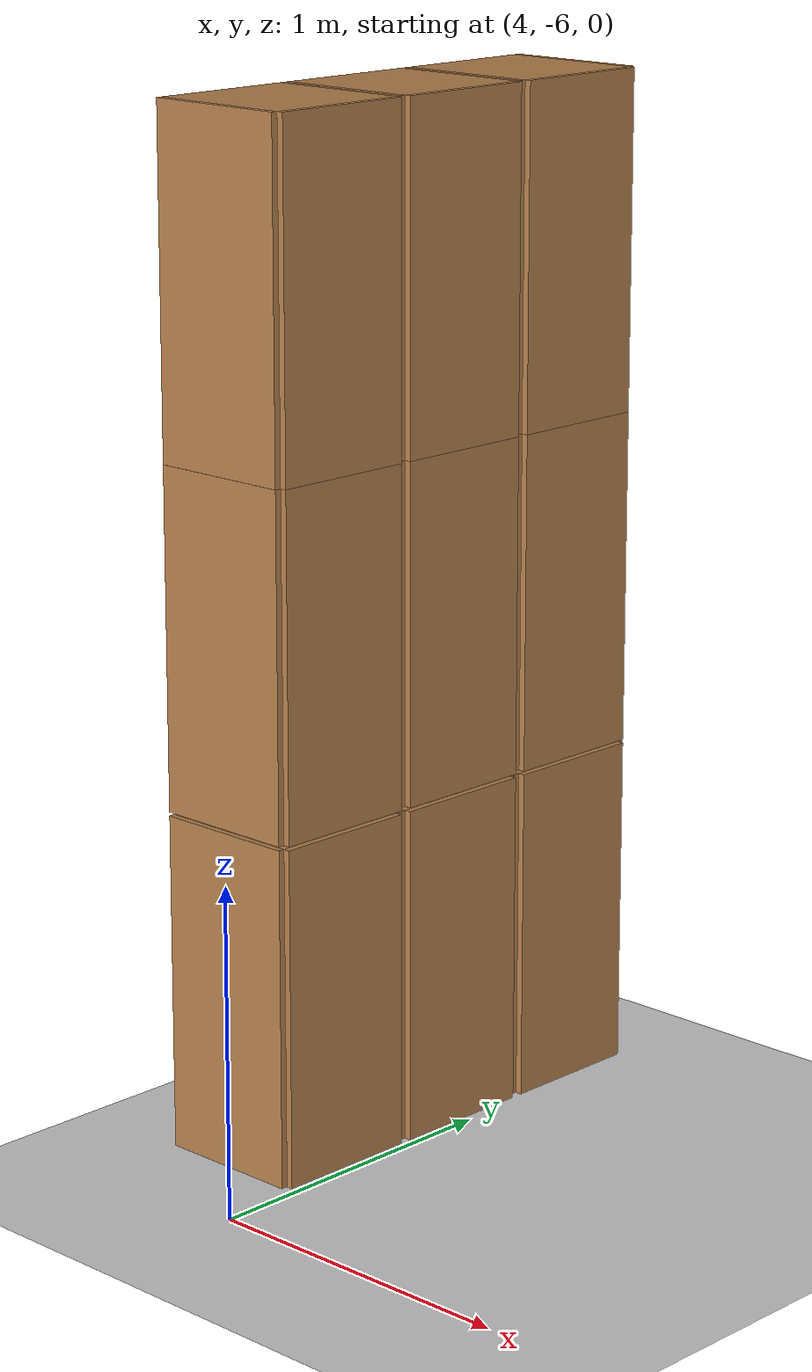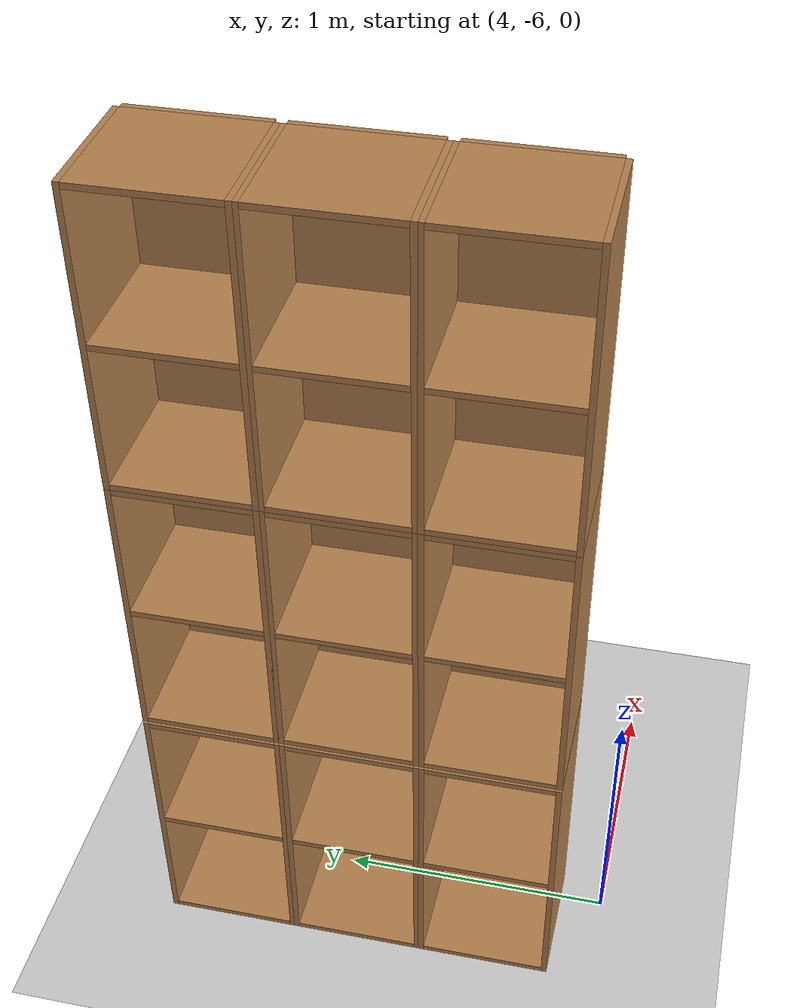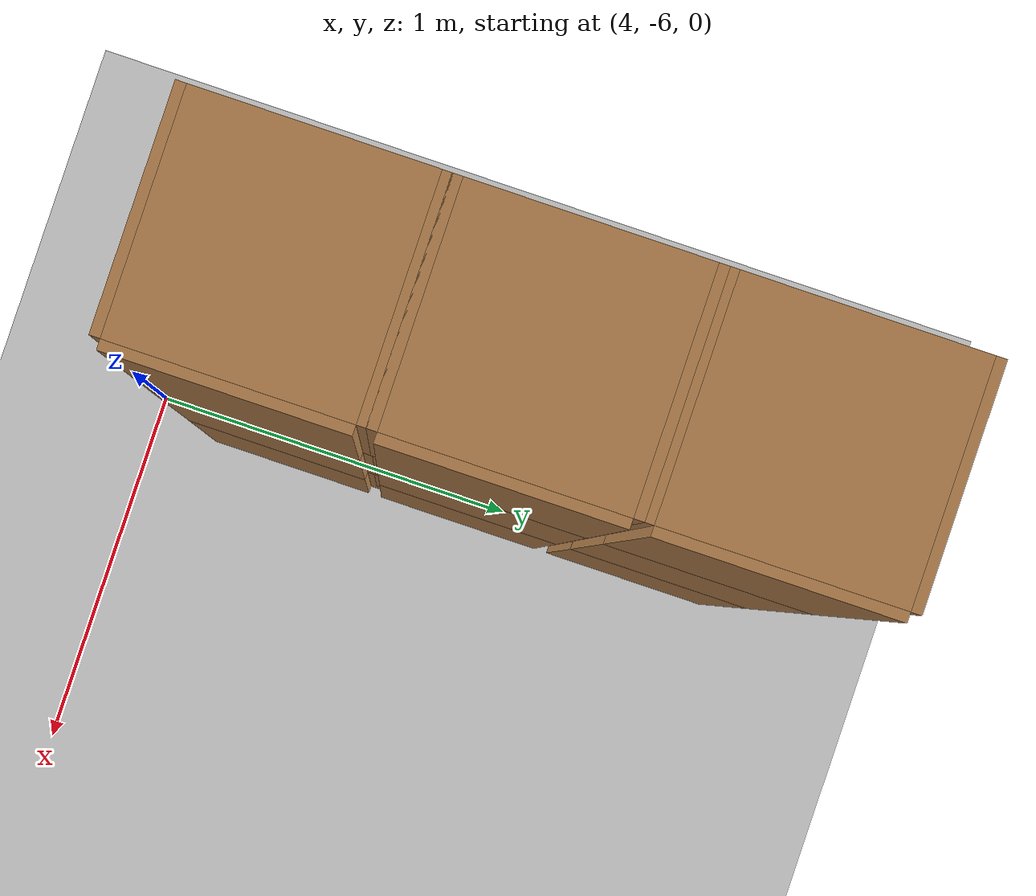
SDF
<sdf version="1.6">
 <world name="default">
  <model name="ground_plane">
   <static>1</static>
   <link name="link">
    <collision name="collision">
     <geometry><plane><normal>0 0 1</normal><size>100 100</size></plane></geometry>
     <surface>
      <contact><collide_bitmask>65535</collide_bitmask></contact>
      <friction><ode><mu>100</mu><mu2>50</mu2></ode></friction>
     </surface>
    </collision>
    <visual name="visual">
     <cast_shadows>0</cast_shadows>
     <geometry><plane><normal>0 0 1</normal><size>100 100</size></plane></geometry>
     <material>
      <script><uri>file://media/materials/scripts/gazebo.material</uri><name>Gazebo/Grey</name></script>
     </material>
    </visual>
   </link>
  </model>
  <model name="Locker18_clone_1">
   <model name="Locker18">
    <model name="Locker3">
     <model name="cabinet">
      <static>1</static>
      <link name="cabinet_bottom_plate">
       <inertial>
        <pose>0 0 -1 0 -0 0</pose>
        <inertia><ixx>2.05</ixx><ixy>0</ixy><ixz>0</ixz><iyy>2.05</iyy><iyz>0</iyz><izz>2.05</izz></inertia>
        <mass>25</mass>
       </inertial>
       <collision name="cabinet_bottom_plate_geom">
        <pose>0 0 0.01 0 -0 0</pose>
        <geometry><box><size>0.45 0.45 0.02</size></box></geometry>
       </collision>
       <visual name="cabinet_bottom_plate_geom_visual">
        <pose>0 0 0.01 0 -0 0</pose>
        <geometry><box><size>0.45 0.45 0.02</size></box></geometry>
        <material>
         <script><uri>file://media/materials/scripts/gazebo.material</uri><name>Gazebo/Wood</name></script>
        </material>
       </visual>
       <collision name="cabinet_bottom_plate_geom_cabinet_back_plate">
        <pose>0.235 0 0.51 0 -0 0</pose>
        <geometry><box><size>0.02 0.45 1.02</size></box></geometry>
       </collision>
       <visual name="cabinet_bottom_plate_geom_cabinet_back_plate_visual">
        <pose>0.235 0 0.51 0 -0 0</pose>
        <geometry><box><size>0.02 0.45 1.02</size></box></geometry>
        <material>
         <script><uri>file://media/materials/scripts/gazebo.material</uri><name>Gazebo/Wood</name></script>
        </material>
       </visual>
       <collision name="cabinet_bottom_plate_geom_cabinet_left_plate">
        <pose>0 0.235 0.51 0 -0 0</pose>
        <geometry><box><size>0.45 0.02 1.02</size></box></geometry>
       </collision>
       <visual name="cabinet_bottom_plate_geom_cabinet_left_plate_visual">
        <pose>0 0.235 0.51 0 -0 0</pose>
        <geometry><box><size>0.45 0.02 1.02</size></box></geometry>
        <material>
         <script><uri>file://media/materials/scripts/gazebo.material</uri><name>Gazebo/Wood</name></script>
        </material>
       </visual>
       <collision name="cabinet_bottom_plate_geom_cabinet_middle_plate">
        <pose>0 0 0.51 0 -0 0</pose>
        <geometry><box><size>0.45 0.45 0.02</size></box></geometry>
       </collision>
       <visual name="cabinet_bottom_plate_geom_cabinet_middle_plate_visual">
        <pose>0 0 0.51 0 -0 0</pose>
        <geometry><box><size>0.45 0.45 0.02</size></box></geometry>
        <material>
         <script><uri>file://media/materials/scripts/gazebo.material</uri><name>Gazebo/Wood</name></script>
        </material>
       </visual>
       <collision name="cabinet_bottom_plate_geom_cabinet_right_plate">
        <pose>0 -0.235 0.51 0 -0 0</pose>
        <geometry><box><size>0.45 0.02 1.02</size></box></geometry>
       </collision>
       <visual name="cabinet_bottom_plate_geom_cabinet_right_plate_visual">
        <pose>0 -0.235 0.51 0 -0 0</pose>
        <geometry><box><size>0.45 0.02 1.02</size></box></geometry>
        <material>
         <script><uri>file://media/materials/scripts/gazebo.material</uri><name>Gazebo/Wood</name></script>
        </material>
       </visual>
       <collision name="cabinet_bottom_plate_geom_cabinet_top_plate">
        <pose>0 0 1.01 0 -0 0</pose>
        <geometry><box><size>0.45 0.45 0.02</size></box></geometry>
       </collision>
       <visual name="cabinet_bottom_plate_geom_cabinet_top_plate_visual">
        <pose>0 0 1.01 0 -0 0</pose>
        <geometry><box><size>0.45 0.45 0.02</size></box></geometry>
        <material>
         <script><uri>file://media/materials/scripts/gazebo.material</uri><name>Gazebo/Wood</name></script>
        </material>
       </visual>
      </link>
      <pose>-0.676968 1.45758 0 0 -0 0</pose>
     </model>
     <model name="cabinet_clone">
      <static>1</static>
      <link name="cabinet_bottom_plate">
       <inertial>
        <pose>0 0 -1 0 -0 0</pose>
        <inertia><ixx>2.05</ixx><ixy>0</ixy><ixz>0</ixz><iyy>2.05</iyy><iyz>0</iyz><izz>2.05</izz></inertia>
        <mass>25</mass>
       </inertial>
       <collision name="cabinet_bottom_plate_geom">
        <pose>0 0 0.01 0 -0 0</pose>
        <geometry><box><size>0.45 0.45 0.02</size></box></geometry>
       </collision>
       <visual name="cabinet_bottom_plate_geom_visual">
        <pose>0 0 0.01 0 -0 0</pose>
        <geometry><box><size>0.45 0.45 0.02</size></box></geometry>
        <material>
         <script><uri>file://media/materials/scripts/gazebo.material</uri><name>Gazebo/Wood</name></script>
        </material>
       </visual>
       <collision name="cabinet_bottom_plate_geom_cabinet_back_plate">
        <pose>0.235 0 0.51 0 -0 0</pose>
        <geometry><box><size>0.02 0.45 1.02</size></box></geometry>
       </collision>
       <visual name="cabinet_bottom_plate_geom_cabinet_back_plate_visual">
        <pose>0.235 0 0.51 0 -0 0</pose>
        <geometry><box><size>0.02 0.45 1.02</size></box></geometry>
        <material>
         <script><uri>file://media/materials/scripts/gazebo.material</uri><name>Gazebo/Wood</name></script>
        </material>
       </visual>
       <collision name="cabinet_bottom_plate_geom_cabinet_left_plate">
        <pose>0 0.235 0.51 0 -0 0</pose>
        <geometry><box><size>0.45 0.02 1.02</size></box></geometry>
       </collision>
       <visual name="cabinet_bottom_plate_geom_cabinet_left_plate_visual">
        <pose>0 0.235 0.51 0 -0 0</pose>
        <geometry><box><size>0.45 0.02 1.02</size></box></geometry>
        <material>
         <script><uri>file://media/materials/scripts/gazebo.material</uri><name>Gazebo/Wood</name></script>
        </material>
       </visual>
       <collision name="cabinet_bottom_plate_geom_cabinet_middle_plate">
        <pose>0 0 0.51 0 -0 0</pose>
        <geometry><box><size>0.45 0.45 0.02</size></box></geometry>
       </collision>
       <visual name="cabinet_bottom_plate_geom_cabinet_middle_plate_visual">
        <pose>0 0 0.51 0 -0 0</pose>
        <geometry><box><size>0.45 0.45 0.02</size></box></geometry>
        <material>
         <script><uri>file://media/materials/scripts/gazebo.material</uri><name>Gazebo/Wood</name></script>
        </material>
       </visual>
       <collision name="cabinet_bottom_plate_geom_cabinet_right_plate">
        <pose>0 -0.235 0.51 0 -0 0</pose>
        <geometry><box><size>0.45 0.02 1.02</size></box></geometry>
       </collision>
       <visual name="cabinet_bottom_plate_geom_cabinet_right_plate_visual">
        <pose>0 -0.235 0.51 0 -0 0</pose>
        <geometry><box><size>0.45 0.02 1.02</size></box></geometry>
        <material>
         <script><uri>file://media/materials/scripts/gazebo.material</uri><name>Gazebo/Wood</name></script>
        </material>
       </visual>
       <collision name="cabinet_bottom_plate_geom_cabinet_top_plate">
        <pose>0 0 1.01 0 -0 0</pose>
        <geometry><box><size>0.45 0.45 0.02</size></box></geometry>
       </collision>
       <visual name="cabinet_bottom_plate_geom_cabinet_top_plate_visual">
        <pose>0 0 1.01 0 -0 0</pose>
        <geometry><box><size>0.45 0.45 0.02</size></box></geometry>
        <material>
         <script><uri>file://media/materials/scripts/gazebo.material</uri><name>Gazebo/Wood</name></script>
        </material>
       </visual>
      </link>
      <pose>-0.676968 0.970971 0 0 -0 0</pose>
     </model>
     <model name="cabinet_clone_0">
      <static>1</static>
      <link name="cabinet_bottom_plate">
       <inertial>
        <pose>0 0 -1 0 -0 0</pose>
        <inertia><ixx>2.05</ixx><ixy>0</ixy><ixz>0</ixz><iyy>2.05</iyy><iyz>0</iyz><izz>2.05</izz></inertia>
        <mass>25</mass>
       </inertial>
       <collision name="cabinet_bottom_plate_geom">
        <pose>0 0 0.01 0 -0 0</pose>
        <geometry><box><size>0.45 0.45 0.02</size></box></geometry>
       </collision>
       <visual name="cabinet_bottom_plate_geom_visual">
        <pose>0 0 0.01 0 -0 0</pose>
        <geometry><box><size>0.45 0.45 0.02</size></box></geometry>
        <material>
         <script><uri>file://media/materials/scripts/gazebo.material</uri><name>Gazebo/Wood</name></script>
        </material>
       </visual>
       <collision name="cabinet_bottom_plate_geom_cabinet_back_plate">
        <pose>0.235 0 0.51 0 -0 0</pose>
        <geometry><box><size>0.02 0.45 1.02</size></box></geometry>
       </collision>
       <visual name="cabinet_bottom_plate_geom_cabinet_back_plate_visual">
        <pose>0.235 0 0.51 0 -0 0</pose>
        <geometry><box><size>0.02 0.45 1.02</size></box></geometry>
        <material>
         <script><uri>file://media/materials/scripts/gazebo.material</uri><name>Gazebo/Wood</name></script>
        </material>
       </visual>
       <collision name="cabinet_bottom_plate_geom_cabinet_left_plate">
        <pose>0 0.235 0.51 0 -0 0</pose>
        <geometry><box><size>0.45 0.02 1.02</size></box></geometry>
       </collision>
       <visual name="cabinet_bottom_plate_geom_cabinet_left_plate_visual">
        <pose>0 0.235 0.51 0 -0 0</pose>
        <geometry><box><size>0.45 0.02 1.02</size></box></geometry>
        <material>
         <script><uri>file://media/materials/scripts/gazebo.material</uri><name>Gazebo/Wood</name></script>
        </material>
       </visual>
       <collision name="cabinet_bottom_plate_geom_cabinet_middle_plate">
        <pose>0 0 0.51 0 -0 0</pose>
        <geometry><box><size>0.45 0.45 0.02</size></box></geometry>
       </collision>
       <visual name="cabinet_bottom_plate_geom_cabinet_middle_plate_visual">
        <pose>0 0 0.51 0 -0 0</pose>
        <geometry><box><size>0.45 0.45 0.02</size></box></geometry>
        <material>
         <script><uri>file://media/materials/scripts/gazebo.material</uri><name>Gazebo/Wood</name></script>
        </material>
       </visual>
       <collision name="cabinet_bottom_plate_geom_cabinet_right_plate">
        <pose>0 -0.235 0.51 0 -0 0</pose>
        <geometry><box><size>0.45 0.02 1.02</size></box></geometry>
       </collision>
       <visual name="cabinet_bottom_plate_geom_cabinet_right_plate_visual">
        <pose>0 -0.235 0.51 0 -0 0</pose>
        <geometry><box><size>0.45 0.02 1.02</size></box></geometry>
        <material>
         <script><uri>file://media/materials/scripts/gazebo.material</uri><name>Gazebo/Wood</name></script>
        </material>
       </visual>
       <collision name="cabinet_bottom_plate_geom_cabinet_top_plate">
        <pose>0 0 1.01 0 -0 0</pose>
        <geometry><box><size>0.45 0.45 0.02</size></box></geometry>
       </collision>
       <visual name="cabinet_bottom_plate_geom_cabinet_top_plate_visual">
        <pose>0 0 1.01 0 -0 0</pose>
        <geometry><box><size>0.45 0.45 0.02</size></box></geometry>
        <material>
         <script><uri>file://media/materials/scripts/gazebo.material</uri><name>Gazebo/Wood</name></script>
        </material>
       </visual>
      </link>
      <pose>-0.676968 0.48391 0 0 -0 0</pose>
     </model>
     <static>0</static>
     <pose>0 3e-06 -1.02763 0 -0 0</pose>
    </model>
    <model name="Locker3_clone">
     <model name="cabinet">
      <static>1</static>
      <link name="cabinet_bottom_plate">
       <inertial>
        <pose>0 0 -1 0 -0 0</pose>
        <inertia><ixx>2.05</ixx><ixy>0</ixy><ixz>0</ixz><iyy>2.05</iyy><iyz>0</iyz><izz>2.05</izz></inertia>
        <mass>25</mass>
       </inertial>
       <collision name="cabinet_bottom_plate_geom">
        <pose>0 0 0.01 0 -0 0</pose>
        <geometry><box><size>0.45 0.45 0.02</size></box></geometry>
       </collision>
       <visual name="cabinet_bottom_plate_geom_visual">
        <pose>0 0 0.01 0 -0 0</pose>
        <geometry><box><size>0.45 0.45 0.02</size></box></geometry>
        <material>
         <script><uri>file://media/materials/scripts/gazebo.material</uri><name>Gazebo/Wood</name></script>
        </material>
       </visual>
       <collision name="cabinet_bottom_plate_geom_cabinet_back_plate">
        <pose>0.235 0 0.51 0 -0 0</pose>
        <geometry><box><size>0.02 0.45 1.02</size></box></geometry>
       </collision>
       <visual name="cabinet_bottom_plate_geom_cabinet_back_plate_visual">
        <pose>0.235 0 0.51 0 -0 0</pose>
        <geometry><box><size>0.02 0.45 1.02</size></box></geometry>
        <material>
         <script><uri>file://media/materials/scripts/gazebo.material</uri><name>Gazebo/Wood</name></script>
        </material>
       </visual>
       <collision name="cabinet_bottom_plate_geom_cabinet_left_plate">
        <pose>0 0.235 0.51 0 -0 0</pose>
        <geometry><box><size>0.45 0.02 1.02</size></box></geometry>
       </collision>
       <visual name="cabinet_bottom_plate_geom_cabinet_left_plate_visual">
        <pose>0 0.235 0.51 0 -0 0</pose>
        <geometry><box><size>0.45 0.02 1.02</size></box></geometry>
        <material>
         <script><uri>file://media/materials/scripts/gazebo.material</uri><name>Gazebo/Wood</name></script>
        </material>
       </visual>
       <collision name="cabinet_bottom_plate_geom_cabinet_middle_plate">
        <pose>0 0 0.51 0 -0 0</pose>
        <geometry><box><size>0.45 0.45 0.02</size></box></geometry>
       </collision>
       <visual name="cabinet_bottom_plate_geom_cabinet_middle_plate_visual">
        <pose>0 0 0.51 0 -0 0</pose>
        <geometry><box><size>0.45 0.45 0.02</size></box></geometry>
        <material>
         <script><uri>file://media/materials/scripts/gazebo.material</uri><name>Gazebo/Wood</name></script>
        </material>
       </visual>
       <collision name="cabinet_bottom_plate_geom_cabinet_right_plate">
        <pose>0 -0.235 0.51 0 -0 0</pose>
        <geometry><box><size>0.45 0.02 1.02</size></box></geometry>
       </collision>
       <visual name="cabinet_bottom_plate_geom_cabinet_right_plate_visual">
        <pose>0 -0.235 0.51 0 -0 0</pose>
        <geometry><box><size>0.45 0.02 1.02</size></box></geometry>
        <material>
         <script><uri>file://media/materials/scripts/gazebo.material</uri><name>Gazebo/Wood</name></script>
        </material>
       </visual>
       <collision name="cabinet_bottom_plate_geom_cabinet_top_plate">
        <pose>0 0 1.01 0 -0 0</pose>
        <geometry><box><size>0.45 0.45 0.02</size></box></geometry>
       </collision>
       <visual name="cabinet_bottom_plate_geom_cabinet_top_plate_visual">
        <pose>0 0 1.01 0 -0 0</pose>
        <geometry><box><size>0.45 0.45 0.02</size></box></geometry>
        <material>
         <script><uri>file://media/materials/scripts/gazebo.material</uri><name>Gazebo/Wood</name></script>
        </material>
       </visual>
      </link>
      <pose>-0.676968 1.45758 0 0 -0 0</pose>
     </model>
     <model name="cabinet_clone">
      <static>1</static>
      <link name="cabinet_bottom_plate">
       <inertial>
        <pose>0 0 -1 0 -0 0</pose>
        <inertia><ixx>2.05</ixx><ixy>0</ixy><ixz>0</ixz><iyy>2.05</iyy><iyz>0</iyz><izz>2.05</izz></inertia>
        <mass>25</mass>
       </inertial>
       <collision name="cabinet_bottom_plate_geom">
        <pose>0 0 0.01 0 -0 0</pose>
        <geometry><box><size>0.45 0.45 0.02</size></box></geometry>
       </collision>
       <visual name="cabinet_bottom_plate_geom_visual">
        <pose>0 0 0.01 0 -0 0</pose>
        <geometry><box><size>0.45 0.45 0.02</size></box></geometry>
        <material>
         <script><uri>file://media/materials/scripts/gazebo.material</uri><name>Gazebo/Wood</name></script>
        </material>
       </visual>
       <collision name="cabinet_bottom_plate_geom_cabinet_back_plate">
        <pose>0.235 0 0.51 0 -0 0</pose>
        <geometry><box><size>0.02 0.45 1.02</size></box></geometry>
       </collision>
       <visual name="cabinet_bottom_plate_geom_cabinet_back_plate_visual">
        <pose>0.235 0 0.51 0 -0 0</pose>
        <geometry><box><size>0.02 0.45 1.02</size></box></geometry>
        <material>
         <script><uri>file://media/materials/scripts/gazebo.material</uri><name>Gazebo/Wood</name></script>
        </material>
       </visual>
       <collision name="cabinet_bottom_plate_geom_cabinet_left_plate">
        <pose>0 0.235 0.51 0 -0 0</pose>
        <geometry><box><size>0.45 0.02 1.02</size></box></geometry>
       </collision>
       <visual name="cabinet_bottom_plate_geom_cabinet_left_plate_visual">
        <pose>0 0.235 0.51 0 -0 0</pose>
        <geometry><box><size>0.45 0.02 1.02</size></box></geometry>
        <material>
         <script><uri>file://media/materials/scripts/gazebo.material</uri><name>Gazebo/Wood</name></script>
        </material>
       </visual>
       <collision name="cabinet_bottom_plate_geom_cabinet_middle_plate">
        <pose>0 0 0.51 0 -0 0</pose>
        <geometry><box><size>0.45 0.45 0.02</size></box></geometry>
       </collision>
       <visual name="cabinet_bottom_plate_geom_cabinet_middle_plate_visual">
        <pose>0 0 0.51 0 -0 0</pose>
        <geometry><box><size>0.45 0.45 0.02</size></box></geometry>
        <material>
         <script><uri>file://media/materials/scripts/gazebo.material</uri><name>Gazebo/Wood</name></script>
        </material>
       </visual>
       <collision name="cabinet_bottom_plate_geom_cabinet_right_plate">
        <pose>0 -0.235 0.51 0 -0 0</pose>
        <geometry><box><size>0.45 0.02 1.02</size></box></geometry>
       </collision>
       <visual name="cabinet_bottom_plate_geom_cabinet_right_plate_visual">
        <pose>0 -0.235 0.51 0 -0 0</pose>
        <geometry><box><size>0.45 0.02 1.02</size></box></geometry>
        <material>
         <script><uri>file://media/materials/scripts/gazebo.material</uri><name>Gazebo/Wood</name></script>
        </material>
       </visual>
       <collision name="cabinet_bottom_plate_geom_cabinet_top_plate">
        <pose>0 0 1.01 0 -0 0</pose>
        <geometry><box><size>0.45 0.45 0.02</size></box></geometry>
       </collision>
       <visual name="cabinet_bottom_plate_geom_cabinet_top_plate_visual">
        <pose>0 0 1.01 0 -0 0</pose>
        <geometry><box><size>0.45 0.45 0.02</size></box></geometry>
        <material>
         <script><uri>file://media/materials/scripts/gazebo.material</uri><name>Gazebo/Wood</name></script>
        </material>
       </visual>
      </link>
      <pose>-0.676968 0.970971 0 0 -0 0</pose>
     </model>
     <model name="cabinet_clone_0">
      <static>1</static>
      <link name="cabinet_bottom_plate">
       <inertial>
        <pose>0 0 -1 0 -0 0</pose>
        <inertia><ixx>2.05</ixx><ixy>0</ixy><ixz>0</ixz><iyy>2.05</iyy><iyz>0</iyz><izz>2.05</izz></inertia>
        <mass>25</mass>
       </inertial>
       <collision name="cabinet_bottom_plate_geom">
        <pose>0 0 0.01 0 -0 0</pose>
        <geometry><box><size>0.45 0.45 0.02</size></box></geometry>
       </collision>
       <visual name="cabinet_bottom_plate_geom_visual">
        <pose>0 0 0.01 0 -0 0</pose>
        <geometry><box><size>0.45 0.45 0.02</size></box></geometry>
        <material>
         <script><uri>file://media/materials/scripts/gazebo.material</uri><name>Gazebo/Wood</name></script>
        </material>
       </visual>
       <collision name="cabinet_bottom_plate_geom_cabinet_back_plate">
        <pose>0.235 0 0.51 0 -0 0</pose>
        <geometry><box><size>0.02 0.45 1.02</size></box></geometry>
       </collision>
       <visual name="cabinet_bottom_plate_geom_cabinet_back_plate_visual">
        <pose>0.235 0 0.51 0 -0 0</pose>
        <geometry><box><size>0.02 0.45 1.02</size></box></geometry>
        <material>
         <script><uri>file://media/materials/scripts/gazebo.material</uri><name>Gazebo/Wood</name></script>
        </material>
       </visual>
       <collision name="cabinet_bottom_plate_geom_cabinet_left_plate">
        <pose>0 0.235 0.51 0 -0 0</pose>
        <geometry><box><size>0.45 0.02 1.02</size></box></geometry>
       </collision>
       <visual name="cabinet_bottom_plate_geom_cabinet_left_plate_visual">
        <pose>0 0.235 0.51 0 -0 0</pose>
        <geometry><box><size>0.45 0.02 1.02</size></box></geometry>
        <material>
         <script><uri>file://media/materials/scripts/gazebo.material</uri><name>Gazebo/Wood</name></script>
        </material>
       </visual>
       <collision name="cabinet_bottom_plate_geom_cabinet_middle_plate">
        <pose>0 0 0.51 0 -0 0</pose>
        <geometry><box><size>0.45 0.45 0.02</size></box></geometry>
       </collision>
       <visual name="cabinet_bottom_plate_geom_cabinet_middle_plate_visual">
        <pose>0 0 0.51 0 -0 0</pose>
        <geometry><box><size>0.45 0.45 0.02</size></box></geometry>
        <material>
         <script><uri>file://media/materials/scripts/gazebo.material</uri><name>Gazebo/Wood</name></script>
        </material>
       </visual>
       <collision name="cabinet_bottom_plate_geom_cabinet_right_plate">
        <pose>0 -0.235 0.51 0 -0 0</pose>
        <geometry><box><size>0.45 0.02 1.02</size></box></geometry>
       </collision>
       <visual name="cabinet_bottom_plate_geom_cabinet_right_plate_visual">
        <pose>0 -0.235 0.51 0 -0 0</pose>
        <geometry><box><size>0.45 0.02 1.02</size></box></geometry>
        <material>
         <script><uri>file://media/materials/scripts/gazebo.material</uri><name>Gazebo/Wood</name></script>
        </material>
       </visual>
       <collision name="cabinet_bottom_plate_geom_cabinet_top_plate">
        <pose>0 0 1.01 0 -0 0</pose>
        <geometry><box><size>0.45 0.45 0.02</size></box></geometry>
       </collision>
       <visual name="cabinet_bottom_plate_geom_cabinet_top_plate_visual">
        <pose>0 0 1.01 0 -0 0</pose>
        <geometry><box><size>0.45 0.45 0.02</size></box></geometry>
        <material>
         <script><uri>file://media/materials/scripts/gazebo.material</uri><name>Gazebo/Wood</name></script>
        </material>
       </visual>
      </link>
      <pose>-0.676968 0.48391 0 0 -0 0</pose>
     </model>
     <static>0</static>
     <pose>0 3e-06 0.003717 0 -0 0</pose>
    </model>
    <model name="Locker3_clone_clone">
     <model name="cabinet">
      <static>1</static>
      <link name="cabinet_bottom_plate">
       <inertial>
        <pose>0 0 -1 0 -0 0</pose>
        <inertia><ixx>2.05</ixx><ixy>0</ixy><ixz>0</ixz><iyy>2.05</iyy><iyz>0</iyz><izz>2.05</izz></inertia>
        <mass>25</mass>
       </inertial>
       <collision name="cabinet_bottom_plate_geom">
        <pose>0 0 0.01 0 -0 0</pose>
        <geometry><box><size>0.45 0.45 0.02</size></box></geometry>
       </collision>
       <visual name="cabinet_bottom_plate_geom_visual">
        <pose>0 0 0.01 0 -0 0</pose>
        <geometry><box><size>0.45 0.45 0.02</size></box></geometry>
        <material>
         <script><uri>file://media/materials/scripts/gazebo.material</uri><name>Gazebo/Wood</name></script>
        </material>
       </visual>
       <collision name="cabinet_bottom_plate_geom_cabinet_back_plate">
        <pose>0.235 0 0.51 0 -0 0</pose>
        <geometry><box><size>0.02 0.45 1.02</size></box></geometry>
       </collision>
       <visual name="cabinet_bottom_plate_geom_cabinet_back_plate_visual">
        <pose>0.235 0 0.51 0 -0 0</pose>
        <geometry><box><size>0.02 0.45 1.02</size></box></geometry>
        <material>
         <script><uri>file://media/materials/scripts/gazebo.material</uri><name>Gazebo/Wood</name></script>
        </material>
       </visual>
       <collision name="cabinet_bottom_plate_geom_cabinet_left_plate">
        <pose>0 0.235 0.51 0 -0 0</pose>
        <geometry><box><size>0.45 0.02 1.02</size></box></geometry>
       </collision>
       <visual name="cabinet_bottom_plate_geom_cabinet_left_plate_visual">
        <pose>0 0.235 0.51 0 -0 0</pose>
        <geometry><box><size>0.45 0.02 1.02</size></box></geometry>
        <material>
         <script><uri>file://media/materials/scripts/gazebo.material</uri><name>Gazebo/Wood</name></script>
        </material>
       </visual>
       <collision name="cabinet_bottom_plate_geom_cabinet_middle_plate">
        <pose>0 0 0.51 0 -0 0</pose>
        <geometry><box><size>0.45 0.45 0.02</size></box></geometry>
       </collision>
       <visual name="cabinet_bottom_plate_geom_cabinet_middle_plate_visual">
        <pose>0 0 0.51 0 -0 0</pose>
        <geometry><box><size>0.45 0.45 0.02</size></box></geometry>
        <material>
         <script><uri>file://media/materials/scripts/gazebo.material</uri><name>Gazebo/Wood</name></script>
        </material>
       </visual>
       <collision name="cabinet_bottom_plate_geom_cabinet_right_plate">
        <pose>0 -0.235 0.51 0 -0 0</pose>
        <geometry><box><size>0.45 0.02 1.02</size></box></geometry>
       </collision>
       <visual name="cabinet_bottom_plate_geom_cabinet_right_plate_visual">
        <pose>0 -0.235 0.51 0 -0 0</pose>
        <geometry><box><size>0.45 0.02 1.02</size></box></geometry>
        <material>
         <script><uri>file://media/materials/scripts/gazebo.material</uri><name>Gazebo/Wood</name></script>
        </material>
       </visual>
       <collision name="cabinet_bottom_plate_geom_cabinet_top_plate">
        <pose>0 0 1.01 0 -0 0</pose>
        <geometry><box><size>0.45 0.45 0.02</size></box></geometry>
       </collision>
       <visual name="cabinet_bottom_plate_geom_cabinet_top_plate_visual">
        <pose>0 0 1.01 0 -0 0</pose>
        <geometry><box><size>0.45 0.45 0.02</size></box></geometry>
        <material>
         <script><uri>file://media/materials/scripts/gazebo.material</uri><name>Gazebo/Wood</name></script>
        </material>
       </visual>
      </link>
      <pose>-0.676968 1.45758 0 0 -0 0</pose>
     </model>
     <model name="cabinet_clone">
      <static>1</static>
      <link name="cabinet_bottom_plate">
       <inertial>
        <pose>0 0 -1 0 -0 0</pose>
        <inertia><ixx>2.05</ixx><ixy>0</ixy><ixz>0</ixz><iyy>2.05</iyy><iyz>0</iyz><izz>2.05</izz></inertia>
        <mass>25</mass>
       </inertial>
       <collision name="cabinet_bottom_plate_geom">
        <pose>0 0 0.01 0 -0 0</pose>
        <geometry><box><size>0.45 0.45 0.02</size></box></geometry>
       </collision>
       <visual name="cabinet_bottom_plate_geom_visual">
        <pose>0 0 0.01 0 -0 0</pose>
        <geometry><box><size>0.45 0.45 0.02</size></box></geometry>
        <material>
         <script><uri>file://media/materials/scripts/gazebo.material</uri><name>Gazebo/Wood</name></script>
        </material>
       </visual>
       <collision name="cabinet_bottom_plate_geom_cabinet_back_plate">
        <pose>0.235 0 0.51 0 -0 0</pose>
        <geometry><box><size>0.02 0.45 1.02</size></box></geometry>
       </collision>
       <visual name="cabinet_bottom_plate_geom_cabinet_back_plate_visual">
        <pose>0.235 0 0.51 0 -0 0</pose>
        <geometry><box><size>0.02 0.45 1.02</size></box></geometry>
        <material>
         <script><uri>file://media/materials/scripts/gazebo.material</uri><name>Gazebo/Wood</name></script>
        </material>
       </visual>
       <collision name="cabinet_bottom_plate_geom_cabinet_left_plate">
        <pose>0 0.235 0.51 0 -0 0</pose>
        <geometry><box><size>0.45 0.02 1.02</size></box></geometry>
       </collision>
       <visual name="cabinet_bottom_plate_geom_cabinet_left_plate_visual">
        <pose>0 0.235 0.51 0 -0 0</pose>
        <geometry><box><size>0.45 0.02 1.02</size></box></geometry>
        <material>
         <script><uri>file://media/materials/scripts/gazebo.material</uri><name>Gazebo/Wood</name></script>
        </material>
       </visual>
       <collision name="cabinet_bottom_plate_geom_cabinet_middle_plate">
        <pose>0 0 0.51 0 -0 0</pose>
        <geometry><box><size>0.45 0.45 0.02</size></box></geometry>
       </collision>
       <visual name="cabinet_bottom_plate_geom_cabinet_middle_plate_visual">
        <pose>0 0 0.51 0 -0 0</pose>
        <geometry><box><size>0.45 0.45 0.02</size></box></geometry>
        <material>
         <script><uri>file://media/materials/scripts/gazebo.material</uri><name>Gazebo/Wood</name></script>
        </material>
       </visual>
       <collision name="cabinet_bottom_plate_geom_cabinet_right_plate">
        <pose>0 -0.235 0.51 0 -0 0</pose>
        <geometry><box><size>0.45 0.02 1.02</size></box></geometry>
       </collision>
       <visual name="cabinet_bottom_plate_geom_cabinet_right_plate_visual">
        <pose>0 -0.235 0.51 0 -0 0</pose>
        <geometry><box><size>0.45 0.02 1.02</size></box></geometry>
        <material>
         <script><uri>file://media/materials/scripts/gazebo.material</uri><name>Gazebo/Wood</name></script>
        </material>
       </visual>
       <collision name="cabinet_bottom_plate_geom_cabinet_top_plate">
        <pose>0 0 1.01 0 -0 0</pose>
        <geometry><box><size>0.45 0.45 0.02</size></box></geometry>
       </collision>
       <visual name="cabinet_bottom_plate_geom_cabinet_top_plate_visual">
        <pose>0 0 1.01 0 -0 0</pose>
        <geometry><box><size>0.45 0.45 0.02</size></box></geometry>
        <material>
         <script><uri>file://media/materials/scripts/gazebo.material</uri><name>Gazebo/Wood</name></script>
        </material>
       </visual>
      </link>
      <pose>-0.676968 0.970971 0 0 -0 0</pose>
     </model>
     <model name="cabinet_clone_0">
      <static>1</static>
      <link name="cabinet_bottom_plate">
       <inertial>
        <pose>0 0 -1 0 -0 0</pose>
        <inertia><ixx>2.05</ixx><ixy>0</ixy><ixz>0</ixz><iyy>2.05</iyy><iyz>0</iyz><izz>2.05</izz></inertia>
        <mass>25</mass>
       </inertial>
       <collision name="cabinet_bottom_plate_geom">
        <pose>0 0 0.01 0 -0 0</pose>
        <geometry><box><size>0.45 0.45 0.02</size></box></geometry>
       </collision>
       <visual name="cabinet_bottom_plate_geom_visual">
        <pose>0 0 0.01 0 -0 0</pose>
        <geometry><box><size>0.45 0.45 0.02</size></box></geometry>
        <material>
         <script><uri>file://media/materials/scripts/gazebo.material</uri><name>Gazebo/Wood</name></script>
        </material>
       </visual>
       <collision name="cabinet_bottom_plate_geom_cabinet_back_plate">
        <pose>0.235 0 0.51 0 -0 0</pose>
        <geometry><box><size>0.02 0.45 1.02</size></box></geometry>
       </collision>
       <visual name="cabinet_bottom_plate_geom_cabinet_back_plate_visual">
        <pose>0.235 0 0.51 0 -0 0</pose>
        <geometry><box><size>0.02 0.45 1.02</size></box></geometry>
        <material>
         <script><uri>file://media/materials/scripts/gazebo.material</uri><name>Gazebo/Wood</name></script>
        </material>
       </visual>
       <collision name="cabinet_bottom_plate_geom_cabinet_left_plate">
        <pose>0 0.235 0.51 0 -0 0</pose>
        <geometry><box><size>0.45 0.02 1.02</size></box></geometry>
       </collision>
       <visual name="cabinet_bottom_plate_geom_cabinet_left_plate_visual">
        <pose>0 0.235 0.51 0 -0 0</pose>
        <geometry><box><size>0.45 0.02 1.02</size></box></geometry>
        <material>
         <script><uri>file://media/materials/scripts/gazebo.material</uri><name>Gazebo/Wood</name></script>
        </material>
       </visual>
       <collision name="cabinet_bottom_plate_geom_cabinet_middle_plate">
        <pose>0 0 0.51 0 -0 0</pose>
        <geometry><box><size>0.45 0.45 0.02</size></box></geometry>
       </collision>
       <visual name="cabinet_bottom_plate_geom_cabinet_middle_plate_visual">
        <pose>0 0 0.51 0 -0 0</pose>
        <geometry><box><size>0.45 0.45 0.02</size></box></geometry>
        <material>
         <script><uri>file://media/materials/scripts/gazebo.material</uri><name>Gazebo/Wood</name></script>
        </material>
       </visual>
       <collision name="cabinet_bottom_plate_geom_cabinet_right_plate">
        <pose>0 -0.235 0.51 0 -0 0</pose>
        <geometry><box><size>0.45 0.02 1.02</size></box></geometry>
       </collision>
       <visual name="cabinet_bottom_plate_geom_cabinet_right_plate_visual">
        <pose>0 -0.235 0.51 0 -0 0</pose>
        <geometry><box><size>0.45 0.02 1.02</size></box></geometry>
        <material>
         <script><uri>file://media/materials/scripts/gazebo.material</uri><name>Gazebo/Wood</name></script>
        </material>
       </visual>
       <collision name="cabinet_bottom_plate_geom_cabinet_top_plate">
        <pose>0 0 1.01 0 -0 0</pose>
        <geometry><box><size>0.45 0.45 0.02</size></box></geometry>
       </collision>
       <visual name="cabinet_bottom_plate_geom_cabinet_top_plate_visual">
        <pose>0 0 1.01 0 -0 0</pose>
        <geometry><box><size>0.45 0.45 0.02</size></box></geometry>
        <material>
         <script><uri>file://media/materials/scripts/gazebo.material</uri><name>Gazebo/Wood</name></script>
        </material>
       </visual>
      </link>
      <pose>-0.676968 0.48391 0 0 -0 0</pose>
     </model>
     <static>0</static>
     <pose>0 3e-06 1.02391 0 -0 0</pose>
    </model>
    <static>0</static>
    <pose>-0 4e-06 4e-06 0 -0 0</pose>
   </model>
   <static>0</static>
   <pose>4.50277 -6.0823 1.08672 0 -0 0</pose>
  </model>
 </world>
</sdf>
